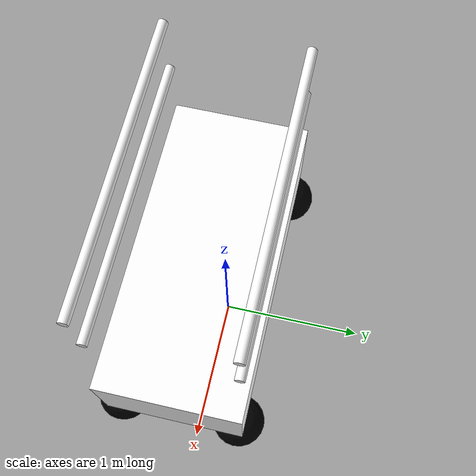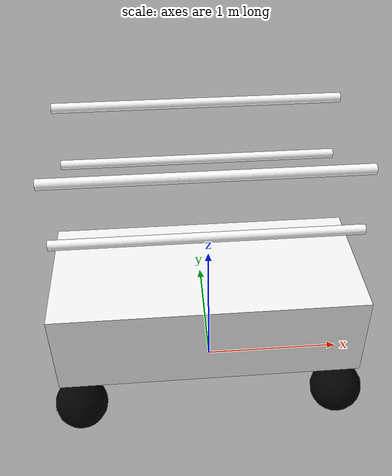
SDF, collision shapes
<?xml version="1.0"?>
<sdf version="1.7">
    <model name="Mecanum lift" xmlns:ignition="https://ignitionrobotics.org/schema">
        <link name="chassis">
            <inertial>
                <mass>1.14395</mass>
                <inertia>
                    <ixx>0.126164</ixx>
                    <ixy>0</ixy>
                    <ixz>0</ixz>
                    <iyy>0.416519</iyy>
                    <iyz>0</iyz>
                    <izz>0.481014</izz>
                </inertia>
            </inertial>
            <collision name="scissor">
                <pose>-0.03 -0.132 0.708 0 0 0</pose>
                <geometry>
                    <box>
                        <size>2.04 0.936 0.6</size>
                    </box>
                </geometry>
            </collision>
            <collision name="bar_1">
                <pose>-0.042 0.294 1.98 0 1.57 0</pose>
                <geometry>
                    <cylinder>
                        <radius>0.03</radius>
                        <length>1.8</length>
                    </cylinder>
                </geometry>
            </collision>
            <collision name="bar_2">
                <pose>-0.042 0.294 1.578 0 1.57 0</pose>
                <geometry>
                    <cylinder>
                        <radius>0.03</radius>
                        <length>1.8</length>
                    </cylinder>
                </geometry>
            </collision>
            <collision name="bar_3">
                <pose>-0.042 -0.558 1.578 0 1.57 0</pose>
                <geometry>
                    <cylinder>
                        <radius>0.03</radius>
                        <length>1.8</length>
                    </cylinder>
                </geometry>
            </collision>
            <collision name="bar_4">
                <pose>-0.042 -0.558 1.98 0 1.57 0</pose>
                <geometry>
                    <cylinder>
                        <radius>0.03</radius>
                        <length>1.8</length>
                    </cylinder>
                </geometry>
            </collision>
            <visual name="visual">
                <pose>0 0 -0.084 1.57 0 0</pose>
                <geometry>
                    <mesh>
                        <scale>0.6 0.6 0.6</scale>
                        <uri>meshes/MecanumLift.dae</uri>
                    </mesh>
                </geometry>
                <material>
                    <diffuse>1.0 1.0 1.0</diffuse>
                    <specular>1.0 1.0 1.0</specular>
                    <pbr>
                        <metal>
                            <albedo_map>materials/textures/Forklift_Forklift_BaseColor.png</albedo_map>
                            <normal_map>materials/textures/Forklift_Forklift_Normal.png</normal_map>
                            <metalness_map>materials/textures/Forklift_Forklift_Metallic.png</metalness_map>
                            <roughness_map>materials/textures/Forklift_Forklift_Roughness.png</roughness_map>
                            <environment_map>https://fuel.ignitionrobotics.org/1.0/openrobotics/models/Reflective table/1/files/materials/textures/DepotEnvMap.dds</environment_map>
                        </metal>
                    </pbr>
                    <!-- fallback to script if no PBR support-->
                    <script>
                        <uri>materials/scripts/</uri>
                        <uri>materials/textures/</uri>
                        <name>UrbanTile/Forklift_Diffuse</name>
                    </script>
                </material>
            </visual>
        </link>
        <link name="front_right_wheel">
            <pose>0.858 -0.552 0.186 0 0 0</pose>
            <inertial>
                <mass>2</mass>
                <inertia>
                    <ixx>0.145833</ixx>
                    <ixy>0</ixy>
                    <ixz>0</ixz>
                    <iyy>0.145833</iyy>
                    <iyz>0</iyz>
                    <izz>0.125</izz>
                </inertia>
            </inertial>
            <collision name="collision">
                <geometry>
                    <sphere>
                        <radius>0.18</radius>
                    </sphere>
                </geometry>
                <surface>
                    <friction>
                        <ode>
                            <mu>1.0</mu>
                            <mu2>0.0</mu2>
                            <fdir1 ignition:expressed_in="chassis">1 1 0</fdir1>
                        </ode>
                    </friction>
                </surface>
            </collision>
            <visual name="visual">
                <geometry>
                    <mesh>
                        <uri>meshes/mecanum_wheel_right.STL</uri>
                        <scale>0.0036 0.0036 0.0036</scale>
                    </mesh>
                </geometry>
                <material>
                    <ambient>0 0 0</ambient>
                    <diffuse>0 0 0</diffuse>
                    <specular>1.0 1.0 1.0</specular>
                </material>
            </visual>
        </link>
        <link name="rear_right_wheel">
            <pose>-0.93 -0.552 0.186 0 0 0</pose>
            <inertial>
                <mass>2</mass>
                <inertia>
                    <ixx>0.145833</ixx>
                    <ixy>0</ixy>
                    <ixz>0</ixz>
                    <iyy>0.145833</iyy>
                    <iyz>0</iyz>
                    <izz>0.125</izz>
                </inertia>
            </inertial>
            <collision name="collision">
                <geometry>
                    <sphere>
                        <radius>0.18</radius>
                    </sphere>
                </geometry>
                <surface>
                    <friction>
                        <ode>
                            <mu>1.0</mu>
                            <mu2>0.0</mu2>
                            <fdir1 ignition:expressed_in="chassis">1 -1 0</fdir1>
                        </ode>
                    </friction>
                </surface>
            </collision>
            <visual name="visual">
                <geometry>
                    <mesh>
                        <uri>meshes/mecanum_wheel_left.STL</uri>
                        <scale>0.0036 0.0036 0.0036</scale>
                    </mesh>
                </geometry>
                <material>
                    <ambient>0 0 0</ambient>
                    <diffuse>0 0 0</diffuse>
                    <specular>1.0 1.0 1.0</specular>
                </material>
            </visual>
        </link>
        <link name="front_left_wheel">
            <pose>0.858 0.282 0.186 0 0 0</pose>
            <inertial>
                <mass>2</mass>
                <inertia>
                    <ixx>0.145833</ixx>
                    <ixy>0</ixy>
                    <ixz>0</ixz>
                    <iyy>0.145833</iyy>
                    <iyz>0</iyz>
                    <izz>0.125</izz>
                </inertia>
            </inertial>
            <collision name="collision">
                <geometry>
                    <sphere>
                        <radius>0.18</radius>
                    </sphere>
                </geometry>
                <surface>
                    <friction>
                        <ode>
                            <mu>1.0</mu>
                            <mu2>0.0</mu2>
                            <fdir1 ignition:expressed_in="chassis">1 -1 0</fdir1>
                        </ode>
                    </friction>
                </surface>
            </collision>
            <visual name="visual">
                <geometry>
                    <mesh>
                        <uri>meshes/mecanum_wheel_left.STL</uri>
                        <scale>0.0036 0.0036 0.0036</scale>
                    </mesh>
                </geometry>
                <material>
                    <ambient>0 0 0</ambient>
                    <diffuse>0 0 0</diffuse>
                    <specular>1.0 1.0 1.0</specular>
                </material>
            </visual>
        </link>
        <link name="rear_left_wheel">
            <pose>-0.93 0.282 0.186 0 0 0</pose>
            <inertial>
                <mass>2</mass>
                <inertia>
                    <ixx>0.145833</ixx>
                    <ixy>0</ixy>
                    <ixz>0</ixz>
                    <iyy>0.145833</iyy>
                    <iyz>0</iyz>
                    <izz>0.125</izz>
                </inertia>
            </inertial>
            <collision name="collision">
                <geometry>
                    <sphere>
                        <radius>0.18</radius>
                    </sphere>
                </geometry>
                <surface>
                    <friction>
                        <ode>
                            <mu>1.0</mu>
                            <mu2>0.0</mu2>
                            <fdir1 ignition:expressed_in="chassis">1 1 0</fdir1>
                        </ode>
                    </friction>
                </surface>
            </collision>
            <visual name="visual">
                <geometry>
                    <mesh>
                        <uri>meshes/mecanum_wheel_right.STL</uri>
                        <scale>0.0036 0.0036 0.0036</scale>
                    </mesh>
                </geometry>
                <material>
                    <ambient>0 0 0</ambient>
                    <diffuse>0 0 0</diffuse>
                    <specular>1.0 1.0 1.0</specular>
                </material>
            </visual>
        </link>
        <joint name="front_left_wheel_joint" type="revolute">
            <parent>chassis</parent>
            <child>front_left_wheel</child>
            <axis>
                <xyz>0 1 0</xyz>
                <limit>
                    <lower>-1.79769e+308</lower>
                    <upper>1.79769e+308</upper>
                </limit>
            </axis>
        </joint>
        <joint name="front_right_wheel_joint" type="revolute">
            <parent>chassis</parent>
            <child>front_right_wheel</child>
            <axis>
                <xyz>0 1 0</xyz>
                <limit>
                    <lower>-1.79769e+308</lower>
                    <upper>1.79769e+308</upper>
                </limit>
            </axis>
        </joint>
        <joint name="rear_left_wheel_joint" type="revolute">
            <parent>chassis</parent>
            <child>rear_left_wheel</child>
            <axis>
                <xyz>0 1 0</xyz>
                <limit>
                    <lower>-1.79769e+308</lower>
                    <upper>1.79769e+308</upper>
                </limit>
            </axis>
        </joint>
        <joint name="rear_right_wheel_joint" type="revolute">
            <parent>chassis</parent>
            <child>rear_right_wheel</child>
            <axis>
                <xyz>0 1 0</xyz>
                <limit>
                    <lower>-1.79769e+308</lower>
                    <upper>1.79769e+308</upper>
                </limit>
            </axis>
        </joint>
        <!-- ros_control plugin -->
        <ros2_control name="GazeboSimSystem" type="system">
            <hardware>
            <plugin>gz_ros2_control/GazeboSimSystem</plugin>
            </hardware>
            <joint name="rear_left_wheel_joint">
            <command_interface name="velocity"/>
            <state_interface name="position"/>
            <state_interface name="velocity"/>
            <state_interface name="effort"/>
            </joint>
            <joint name="rear_right_wheel_joint">
            <command_interface name="velocity"/>
            <state_interface name="position"/>
            <state_interface name="velocity"/>
            <state_interface name="effort"/>
            </joint>
            <joint name="front_left_wheel_joint">
            <command_interface name="velocity"/>
            <state_interface name="position"/>
            <state_interface name="velocity"/>
            <state_interface name="effort"/>
            </joint>
            <joint name="front_right_wheel_joint">
            <command_interface name="velocity"/>
            <state_interface name="position"/>
            <state_interface name="velocity"/>
            <state_interface name="effort"/>
            </joint>
        </ros2_control>

        <plugin filename="gz_ros2_control-system" name="gz_ros2_control::GazeboSimROS2ControlPlugin">
            <parameters>/home/juliajia/ros2_control_ws/install/ros2_control_demo_example_17/share/ros2_control_demo_example_17/config/mecanum_bot_controller.yaml</parameters>
        </plugin>
    </model>
</sdf>
